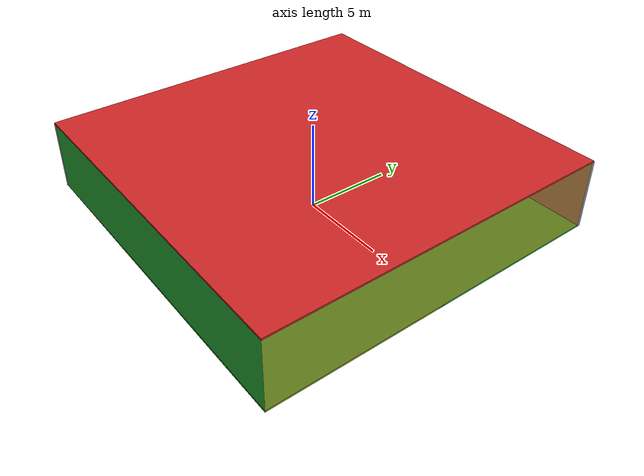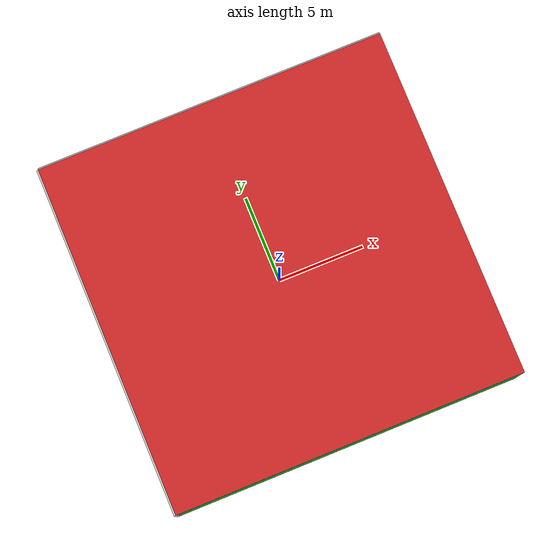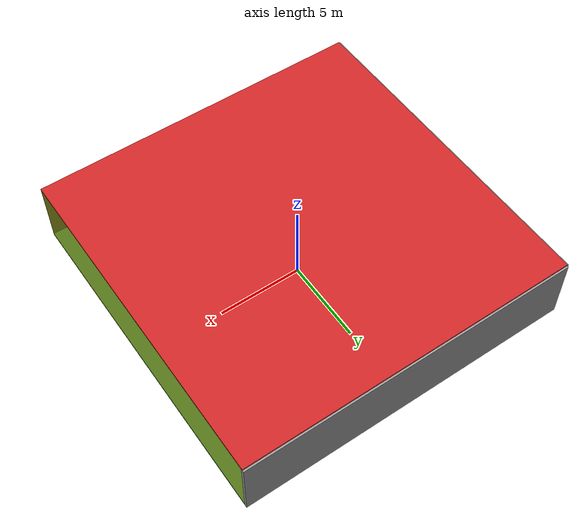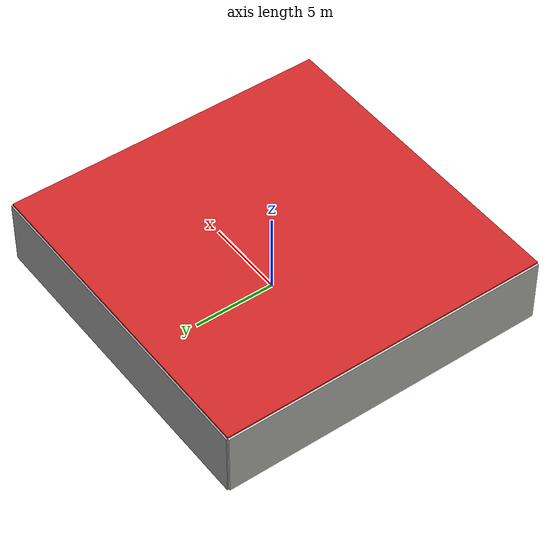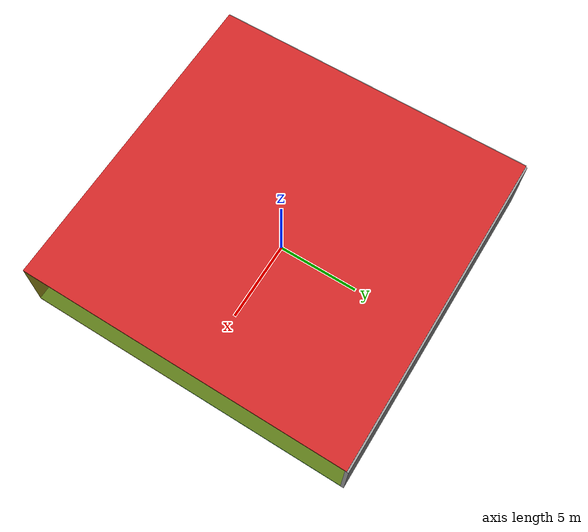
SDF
<sdf version="1.4">
 <world name="default">
  <physics type="ode">
   <max_step_size>0.001</max_step_size>
   <real_time_factor>1</real_time_factor>
   <real_time_update_rate>1000</real_time_update_rate>
   <gravity>0 0 -9.8</gravity>
  </physics>
  <scene><ambient>0.4 0.4 0.4 1</ambient><background>0.7 0.7 0.7 1</background><shadows>1</shadows></scene>
  <model name="Surrounding">
   <static>1</static>
   <link name="Ceiling">
    <collision name="Ceiling_Collision"><geometry><box><size>20 20 0.1</size></box></geometry></collision>
    <visual name="Ceiling_Visual">
     <geometry><box><size>20 20 0.1</size></box></geometry>
     <material>
      <script><uri>file://media/materials/scripts/gazebo.material</uri><name>Gazebo/RedBright</name></script>
     </material>
    </visual>
    <pose>0 0 4.05 0 0 0</pose>
   </link>
   <link name="Wall_South">
    <collision name="Wall_South_Collision">
     <geometry><box><size>20 0 4</size></box></geometry>
     <pose>0 0 2 0 -0 0</pose>
    </collision>
    <visual name="Wall_South_Visual">
     <pose>0 0 2 0 -0 0</pose>
     <geometry><box><size>20 0 4</size></box></geometry>
     <material>
      <script><uri>file://media/materials/scripts/gazebo.material</uri><name>Gazebo/GreenGlow</name></script>
     </material>
    </visual>
    <velocity_decay><linear>0</linear><angular>0</angular></velocity_decay>
    <pose>0 -10 0 0 -0 0</pose>
   </link>
   <link name="Wall_East">
    <collision name="Wall_21_Collision">
     <geometry><box><size>20 0 4</size></box></geometry>
     <pose>0 0 2 0 -0 0</pose>
    </collision>
    <visual name="Wall_21_Visual">
     <pose>0 0 2 0 -0 0</pose>
     <geometry><box><size>20 0 4</size></box></geometry>
     <material>
      <script>
       <uri>file://media/materials/scripts/gazebo.material</uri>
       <name>Gazebo/OrangeTransparent</name>
      </script>
     </material>
    </visual>
    <velocity_decay><linear>0</linear><angular>0</angular></velocity_decay>
    <pose>10 0 0 0 -0 1.5708</pose>
   </link>
   <link name="Wall_North">
    <collision name="Wall_22_Collision">
     <geometry><box><size>20 0.2 4</size></box></geometry>
     <pose>0 0 2 0 -0 0</pose>
    </collision>
    <visual name="Wall_22_Visual">
     <pose>0 0 2 0 -0 0</pose>
     <geometry><box><size>20 0.2 4</size></box></geometry>
     <material>
      <script><uri>file://media/materials/scripts/gazebo.material</uri><name>Gazebo/GreyGradientSky</name></script>
     </material>
    </visual>
    <velocity_decay><linear>0</linear><angular>0</angular></velocity_decay>
    <pose>0 10 0 0 -0 0</pose>
   </link>
   <link name="Wall_West">
    <collision name="Wall_23_Collision">
     <geometry><box><size>20 0.2 4</size></box></geometry>
     <pose>0 0 2 0 -0 0</pose>
    </collision>
    <visual name="Wall_23_Visual">
     <pose>0 0 2 0 -0 0</pose>
     <geometry><box><size>20 0.2 4</size></box></geometry>
     <material>
      <script><uri>file://media/materials/scripts/gazebo.material</uri><name>Gazebo/CeilingTiled</name></script>
     </material>
    </visual>
    <velocity_decay><linear>0</linear><angular>0</angular></velocity_decay>
    <pose>-10 0 0 0 0 -1.5708</pose>
   </link>
   <link name="Ground_link">
    <collision name="collision">
     <pose>0 0 .05 0 -0 0</pose>
     <geometry><box><size>20 20 0.1</size></box></geometry>
    </collision>
    <visual name="visual">
     <pose>0 0 .05 0 -0 0</pose>
     <geometry><box><size>20 20 0.1</size></box></geometry>
     <material>
      <script><uri>file://media/materials/scripts/gazebo.material</uri><name>Gazebo/Green</name></script>
     </material>
    </visual>
   </link>
   <static>1</static>
  </model>
  <spherical_coordinates>
   <surface_model>EARTH_WGS84</surface_model>
   <latitude_deg>0</latitude_deg>
   <longitude_deg>0</longitude_deg>
   <elevation>0</elevation>
   <heading_deg>0</heading_deg>
  </spherical_coordinates>
  <light name="lightball_0" type="diffuse">
   <diffuse>0.8 0.8 0.8 1</diffuse>
   <specular>0.2 0.2 0.2 1</specular>
   <attenuation>
    <range>100</range>
    <constant>0.7</constant>
    <linear>0.01</linear>
    <quadratic>0.001</quadratic>
   </attenuation>
   <direction>-0.5 0.1 -0.9</direction>
   <pose>4.42907365843 -3.59603907131 3.74737089855 0 0 0</pose>
  </light>
  <light name="lightball_1" type="diffuse">
   <diffuse>0.8 0.8 0.8 1</diffuse>
   <specular>0.2 0.2 0.2 1</specular>
   <attenuation>
    <range>100</range>
    <constant>0.7</constant>
    <linear>0.01</linear>
    <quadratic>0.001</quadratic>
   </attenuation>
   <direction>-0.5 0.1 -0.9</direction>
   <pose>-8.17243152254 -9.82219649971 0.913129262322 0 0 0</pose>
  </light>
  <light name="lightball_2" type="diffuse">
   <diffuse>0.8 0.8 0.8 1</diffuse>
   <specular>0.2 0.2 0.2 1</specular>
   <attenuation>
    <range>100</range>
    <constant>0.7</constant>
    <linear>0.01</linear>
    <quadratic>0.001</quadratic>
   </attenuation>
   <direction>-0.5 0.1 -0.9</direction>
   <pose>7.11749125213 -3.05358353199 2.90469707786 0 0 0</pose>
  </light>
  <light name="lightball_3" type="diffuse">
   <diffuse>0.8 0.8 0.8 1</diffuse>
   <specular>0.2 0.2 0.2 1</specular>
   <attenuation>
    <range>100</range>
    <constant>0.7</constant>
    <linear>0.01</linear>
    <quadratic>0.001</quadratic>
   </attenuation>
   <direction>-0.5 0.1 -0.9</direction>
   <pose>-6.21988023396 2.23296648785 2.26684178715 0 0 0</pose>
  </light>
  <light name="lightball_4" type="diffuse">
   <diffuse>0.8 0.8 0.8 1</diffuse>
   <specular>0.2 0.2 0.2 1</specular>
   <attenuation>
    <range>100</range>
    <constant>0.7</constant>
    <linear>0.01</linear>
    <quadratic>0.001</quadratic>
   </attenuation>
   <direction>-0.5 0.1 -0.9</direction>
   <pose>0.174425422106 -9.1916094778 3.8421256494 0 0 0</pose>
  </light>
  <light name="lightball_5" type="diffuse">
   <diffuse>0.8 0.8 0.8 1</diffuse>
   <specular>0.2 0.2 0.2 1</specular>
   <attenuation>
    <range>100</range>
    <constant>0.7</constant>
    <linear>0.01</linear>
    <quadratic>0.001</quadratic>
   </attenuation>
   <direction>-0.5 0.1 -0.9</direction>
   <pose>2.18603927999 9.18610897264 1.59805017859 0 0 0</pose>
  </light>
  <light name="lightball_6" type="diffuse">
   <diffuse>0.8 0.8 0.8 1</diffuse>
   <specular>0.2 0.2 0.2 1</specular>
   <attenuation>
    <range>100</range>
    <constant>0.7</constant>
    <linear>0.01</linear>
    <quadratic>0.001</quadratic>
   </attenuation>
   <direction>-0.5 0.1 -0.9</direction>
   <pose>-5.67238276991 7.32045242729 1.62861774965 0 0 0</pose>
  </light>
  <light name="lightball_7" type="diffuse">
   <diffuse>0.8 0.8 0.8 1</diffuse>
   <specular>0.2 0.2 0.2 1</specular>
   <attenuation>
    <range>100</range>
    <constant>0.7</constant>
    <linear>0.01</linear>
    <quadratic>0.001</quadratic>
   </attenuation>
   <direction>-0.5 0.1 -0.9</direction>
   <pose>-1.37010834196 4.43026873834 3.160191365 0 0 0</pose>
  </light>
  <light name="lightball_8" type="diffuse">
   <diffuse>0.8 0.8 0.8 1</diffuse>
   <specular>0.2 0.2 0.2 1</specular>
   <attenuation>
    <range>100</range>
    <constant>0.7</constant>
    <linear>0.01</linear>
    <quadratic>0.001</quadratic>
   </attenuation>
   <direction>-0.5 0.1 -0.9</direction>
   <pose>4.78921382068 -1.29354242144 1.19332539655 0 0 0</pose>
  </light>
  <include>
   <uri>model://robocup_3Dsim_goal</uri>
   <pose>-4.19976539695 -0.963761557964 0 0 0 2.52083092933</pose>
  </include>
  <include>
   <uri>model://robocup_3Dsim_goal</uri>
   <pose>-1.27382190232 -7.63484849918 0 0 0 2.9268587143</pose>
  </include>
  <include><uri>model://cabinet</uri><pose>-1.07760760434 8.24793538047 0 0 0 2.31860105121</pose></include>
  <include>
   <uri>model://robocup_3Dsim_goal</uri>
   <pose>0.873156070384 -1.77305843224 0 0 0 1.09320237979</pose>
  </include>
  <include><uri>model://cabinet</uri><pose>4.66836242298 6.92282939947 0 0 0 0.0813525557725</pose></include>
 </world>
</sdf>

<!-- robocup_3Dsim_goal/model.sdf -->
<sdf version="1.5">
  <model name="robocup_3d_goal">
    <static>true</static>
    <link name="left_post">
      <pose>0 1.05 0.45 0 0 0</pose>
      <collision name="collision">
        <geometry>
          <cylinder>
            <radius>0.05</radius>
            <length>0.9</length>
          </cylinder>
        </geometry>
      </collision>
      <visual name="visual">
        <geometry>
          <cylinder>
            <radius>0.05</radius>
            <length>0.9</length>
          </cylinder>
        </geometry>
        <material>
          <script>
            <uri>file://media/materials/scripts/gazebo.material</uri>
            <name>Gazebo/ZincYellow</name>
          </script>
        </material>
      </visual>
    </link>
    <link name="left_support_horiz_lower">
      <pose>0.30 1.05 0.01 0 0 0</pose>
      <collision name="collision">
        <geometry>
          <box>
            <size>0.50 0.02 0.02</size>
          </box>
        </geometry>
      </collision>
      <visual name="visual">
        <geometry>
          <box>
            <size>0.50 0.02 0.02</size>
          </box>
        </geometry>
        <material>
          <script>
            <uri>file://media/materials/scripts/gazebo.material</uri>
            <name>Gazebo/White</name>
          </script>
        </material>
      </visual>
    </link>
    <link name="left_support_horiz_upper">
      <pose>0.30 1.05 0.79 0 0 0</pose>
      <collision name="collision">
        <geometry>
          <box>
            <size>0.50 0.02 0.02</size>
          </box>
        </geometry>
      </collision>
      <visual name="visual">
        <geometry>
          <box>
            <size>0.50 0.02 0.02</size>
          </box>
        </geometry>
        <material>
          <script>
            <uri>file://media/materials/scripts/gazebo.material</uri>
            <name>Gazebo/White</name>
          </script>
        </material>
      </visual>
    </link>
    <link name="left_support_vertical">
      <pose>0.56 1.05 0.4 0 1.5708 0</pose>
      <collision name="collision">
        <geometry>
          <box>
            <size>0.80 0.02 0.02</size>
          </box>
        </geometry>
      </collision>
      <visual name="visual">
        <geometry>
          <box>
            <size>0.80 0.02 0.02</size>
          </box>
        </geometry>
        <material>
          <script>
            <uri>file://media/materials/scripts/gazebo.material</uri>
            <name>Gazebo/White</name>
          </script>
        </material>
      </visual>
    </link>
    <link name="right_support_horiz_lower">
      <pose>0.30 -1.05 0.01 0 0 0</pose>
      <collision name="collision">
        <geometry>
          <box>
            <size>0.50 0.02 0.02</size>
          </box>
        </geometry>
      </collision>
      <visual name="visual">
        <geometry>
          <box>
            <size>0.50 0.02 0.02</size>
          </box>
        </geometry>
        <material>
          <script>
            <uri>file://media/materials/scripts/gazebo.material</uri>
            <name>Gazebo/White</name>
          </script>
        </material>
      </visual>
    </link>
    <link name="right_support_horiz_upper">
      <pose>0.30 -1.05 0.79 0 0 0</pose>
      <collision name="collision">
        <geometry>
          <box>
            <size>0.50 0.02 0.02</size>
          </box>
        </geometry>
      </collision>
      <visual name="visual">
        <geometry>
          <box>
            <size>0.50 0.02 0.02</size>
          </box>
        </geometry>
        <material>
          <script>
            <uri>file://media/materials/scripts/gazebo.material</uri>
            <name>Gazebo/White</name>
          </script>
        </material>
      </visual>
    </link>
    <link name="right_support_vertical">
      <pose>0.56 -1.05 0.4 0 1.5708 0</pose>
      <collision name="collision">
        <geometry>
          <box>
            <size>0.80 0.02 0.02</size>
          </box>
        </geometry>
      </collision>
      <visual name="visual">
        <geometry>
          <box>
            <size>0.80 0.02 0.02</size>
          </box>
        </geometry>
        <material>
          <script>
            <uri>file://media/materials/scripts/gazebo.material</uri>
            <name>Gazebo/White</name>
          </script>
        </material>
      </visual>
    </link>
    <link name="center_support_horiz_lower">
      <pose>0.56 0 0.01 0 1.5708 0</pose>
      <collision name="collision">
        <geometry>
          <box>
            <size>0.02 2.08 0.02</size>
          </box>
        </geometry>
      </collision>
      <visual name="visual">
        <geometry>
          <box>
            <size>0.02 2.08 0.02</size>
          </box>
        </geometry>
        <material>
          <script>
            <uri>file://media/materials/scripts/gazebo.material</uri>
            <name>Gazebo/White</name>
          </script>
        </material>
      </visual>
    </link>
    <link name="center_support_horiz_upper">
      <pose>0.56 0 0.79 0 1.5708 0</pose>
      <collision name="collision">
        <geometry>
          <box>
            <size>0.02 2.08 0.02</size>
          </box>
        </geometry>
      </collision>
      <visual name="visual">
        <geometry>
          <box>
            <size>0.02 2.08 0.02</size>
          </box>
        </geometry>
        <material>
          <script>
            <uri>file://media/materials/scripts/gazebo.material</uri>
            <name>Gazebo/White</name>
          </script>
        </material>
      </visual>
    </link>
    <link name="right_post">
      <pose>0 -1.05 0.45 0 0 0</pose>
      <collision name="collision">
        <geometry>
          <cylinder>
            <radius>0.05</radius>
            <length>0.9</length>
          </cylinder>
        </geometry>
      </collision>
      <visual name="visual">
        <geometry>
          <cylinder>
            <radius>0.05</radius>
            <length>0.9</length>
          </cylinder>
        </geometry>
        <material>
          <script>
            <uri>file://media/materials/scripts/gazebo.material</uri>
            <name>Gazebo/ZincYellow</name>
          </script>
        </material>
      </visual>
    </link>
    <link name="crossbar">
      <pose>0 0 0.85 1.57 1.57 0</pose>
      <collision name="collision">
        <geometry>
          <cylinder>
            <radius>0.05</radius>
            <length>2.0</length>
          </cylinder>
        </geometry>
      </collision>
      <visual name="visual">
        <geometry>
          <cylinder>
            <radius>0.05</radius>
            <length>2.0</length>
          </cylinder>
        </geometry>
        <material>
          <script>
            <uri>file://media/materials/scripts/gazebo.material</uri>
            <name>Gazebo/ZincYellow</name>
          </script>
        </material>
      </visual>
    </link>
    <link name="center_net">
      <pose>0.56 0 0.40 0 0 0</pose>
      <collision name="collision">
        <geometry>
          <box>
            <size>0.01 2.1 0.80</size>
          </box>
        </geometry>
      </collision>
      <visual name="visual">
        <geometry>
          <box>
            <size>0.01 2.1 0.80</size>
          </box>
        </geometry>
        <material>
          <script>
            <uri>model://../model_source/models/robocup09_spl_field/materials/scripts/</uri>
            <uri>model://../model_source/models/robocup09_spl_field/materials/textures/</uri>
            <name>RoboCup/Net</name>
          </script>
        </material>
      </visual>
    </link>
    <link name="left_net">
      <pose>0.30 1.05 0.40 0 0 0</pose>
      <collision name="collision">
        <geometry>
          <box>
            <size>0.50 0.01 0.76</size>
          </box>
        </geometry>
      </collision>
      <visual name="visual">
        <geometry>
          <box>
            <size>0.50 0.01 0.76</size>
          </box>
        </geometry>
        <material>
          <script>
            <uri>model://../model_source/models/robocup09_spl_field/materials/scripts/</uri>
            <uri>model://../model_source/models/robocup09_spl_field/materials/textures/</uri>
            <name>RoboCup/Net</name>
          </script>
        </material>
      </visual>
    </link>
    <link name="right_net">
      <pose>0.30 -1.05 0.40 0 0 0</pose>
      <collision name="collision">
        <geometry>
          <box>
            <size>0.50 0.01 0.76</size>
          </box>
        </geometry>
      </collision>
      <visual name="visual">
        <geometry>
          <box>
            <size>0.50 0.01 0.76</size>
          </box>
        </geometry>
        <material>
          <script>
            <uri>model://../model_source/models/robocup09_spl_field/materials/scripts/</uri>
            <uri>model://../model_source/models/robocup09_spl_field/materials/textures/</uri>
            <name>RoboCup/Net</name>
          </script>
        </material>
      </visual>
    </link>
  </model>
</sdf>

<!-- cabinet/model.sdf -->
<sdf version="1.5">
  <model name="cabinet">
    <static>true</static>
    <link name="cabinet_bottom_plate">
      <inertial>
        <pose>0 0 -1 0 0 0</pose>
        <inertia>
          <ixx>2.050000</ixx>
          <ixy>0</ixy>
          <ixz>0</ixz>
          <iyy>2.050000</iyy>
          <iyz>0</iyz>
          <izz>2.050000</izz>
        </inertia>
        <mass>25.000000</mass>
      </inertial>
      <collision name="cabinet_bottom_plate_geom">
        <pose>0 0 0.010000 0 0 0</pose>
        <geometry>
          <box>
            <size>0.450000 0.450000 0.020000</size>
          </box>
        </geometry>
      </collision>
      <visual name="cabinet_bottom_plate_geom_visual">
        <pose>0 0 0.010000 0 0 0</pose>
        <geometry>
          <box>
            <size>0.450000 0.450000 0.020000</size>
          </box>
        </geometry>
        <material>
          <script>
            <uri>model://media/materials/scripts/gazebo.material</uri>
            <name>Gazebo/Wood</name>
          </script>
        </material>
      </visual>
      <collision name="cabinet_bottom_plate_geom_cabinet_back_plate">
        <pose>0.235000 0 0.510000 0 0 0</pose>
        <geometry>
          <box>
            <size>0.020000 0.450000 1.020000</size>
          </box>
        </geometry>
      </collision>
      <visual name="cabinet_bottom_plate_geom_cabinet_back_plate_visual">
        <pose>0.235000 0 0.510000 0 0 0</pose>
        <geometry>
          <box>
            <size>0.020000 0.450000 1.020000</size>
          </box>
        </geometry>
        <material>
          <script>
            <uri>model://media/materials/scripts/gazebo.material</uri>
            <name>Gazebo/Wood</name>
          </script>
        </material>
      </visual>
      <collision name="cabinet_bottom_plate_geom_cabinet_left_plate">
        <pose>0 0.235000 0.510000 0 0 0</pose>
        <geometry>
          <box>
            <size>0.450000 0.020000 1.020000</size>
          </box>
        </geometry>
      </collision>
      <visual name="cabinet_bottom_plate_geom_cabinet_left_plate_visual">
        <pose>0 0.235000 0.510000 0 0 0</pose>
        <geometry>
          <box>
            <size>0.450000 0.020000 1.020000</size>
          </box>
        </geometry>
        <material>
          <script>
            <uri>model://media/materials/scripts/gazebo.material</uri>
            <name>Gazebo/Wood</name>
          </script>
        </material>
      </visual>
      <collision name="cabinet_bottom_plate_geom_cabinet_middle_plate">
        <pose>0 0 0.510000 0 0 0</pose>
        <geometry>
          <box>
            <size>0.450000 0.450000 0.020000</size>
          </box>
        </geometry>
      </collision>
      <visual name="cabinet_bottom_plate_geom_cabinet_middle_plate_visual">
        <pose>0 0 0.510000 0 0 0</pose>
        <geometry>
          <box>
            <size>0.450000 0.450000 0.020000</size>
          </box>
        </geometry>
        <material>
          <script>
            <uri>model://media/materials/scripts/gazebo.material</uri>
            <name>Gazebo/Wood</name>
          </script>
        </material>
      </visual>
      <collision name="cabinet_bottom_plate_geom_cabinet_right_plate">
        <pose>0 -0.235000 0.510000 0 0 0</pose>
        <geometry>
          <box>
            <size>0.450000 0.020000 1.020000</size>
          </box>
        </geometry>
      </collision>
      <visual name="cabinet_bottom_plate_geom_cabinet_right_plate_visual">
        <pose>0 -0.235000 0.510000 0 0 0</pose>
        <geometry>
          <box>
            <size>0.450000 0.020000 1.020000</size>
          </box>
        </geometry>
        <material>
          <script>
            <uri>model://media/materials/scripts/gazebo.material</uri>
            <name>Gazebo/Wood</name>
          </script>
        </material>
      </visual>
      <collision name="cabinet_bottom_plate_geom_cabinet_top_plate">
        <pose>0 0 1.010000 0 0 0</pose>
        <geometry>
          <box>
            <size>0.450000 0.450000 0.020000</size>
          </box>
        </geometry>
      </collision>
      <visual name="cabinet_bottom_plate_geom_cabinet_top_plate_visual">
        <pose>0 0 1.010000 0 0 0</pose>
        <geometry>
          <box>
            <size>0.450000 0.450000 0.020000</size>
          </box>
        </geometry>
        <material>
          <script>
            <uri>model://media/materials/scripts/gazebo.material</uri>
            <name>Gazebo/Wood</name>
          </script>
        </material>
      </visual>
    </link>
  </model>
</sdf>
